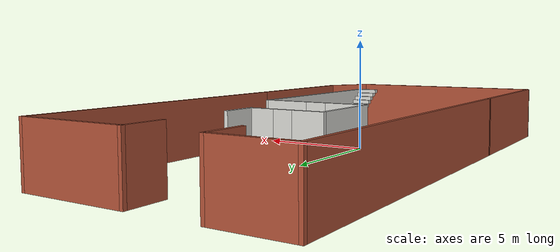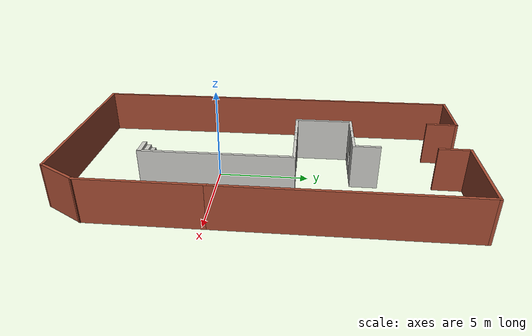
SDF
<?xml version='1.0'?>
<sdf version='1.7'>
  <model name='construction_area'>
    <pose>-0.27141 2.64885 0 0 -0 0</pose>
    <link name='Stairs_1'>
      <visual name='Stairs_1_Visual_0'>
        <pose>1.86697 -3.1665 0.083333 0 -0 0</pose>
        <geometry>
          <box>
            <size>1 0.233333 0.166667</size>
          </box>
        </geometry>
        <material>
          <script>
            <uri>file://media/materials/scripts/gazebo.material</uri>
            <name>Gazebo/CeilingTiled</name>
          </script>
          <ambient>0.760784 0.662745 0.627451 1</ambient>
        </material>
        <meta>
          <layer>0</layer>
        </meta>
      </visual>
      <collision name='Stairs_1_Collision_0'>
        <geometry>
          <box>
            <size>1 0.233333 0.166667</size>
          </box>
        </geometry>
        <pose>1.86697 -3.1665 0.083333 0 -0 0</pose>
      </collision>
      <visual name='Stairs_1_Visual_1'>
        <pose>1.86697 -3.39983 0.25 0 -0 0</pose>
        <geometry>
          <box>
            <size>1 0.233333 0.166667</size>
          </box>
        </geometry>
        <material>
          <script>
            <uri>file://media/materials/scripts/gazebo.material</uri>
            <name>Gazebo/CeilingTiled</name>
          </script>
          <ambient>0.760784 0.662745 0.627451 1</ambient>
        </material>
        <meta>
          <layer>0</layer>
        </meta>
      </visual>
      <collision name='Stairs_1_Collision_1'>
        <geometry>
          <box>
            <size>1 0.233333 0.166667</size>
          </box>
        </geometry>
        <pose>1.86697 -3.39983 0.25 0 -0 0</pose>
      </collision>
      <visual name='Stairs_1_Visual_2'>
        <pose>1.86697 -3.63317 0.416667 0 -0 0</pose>
        <geometry>
          <box>
            <size>1 0.233333 0.166667</size>
          </box>
        </geometry>
        <material>
          <script>
            <uri>file://media/materials/scripts/gazebo.material</uri>
            <name>Gazebo/CeilingTiled</name>
          </script>
          <ambient>0.760784 0.662745 0.627451 1</ambient>
        </material>
        <meta>
          <layer>0</layer>
        </meta>
      </visual>
      <collision name='Stairs_1_Collision_2'>
        <geometry>
          <box>
            <size>1 0.233333 0.166667</size>
          </box>
        </geometry>
        <pose>1.86697 -3.63317 0.416667 0 -0 0</pose>
      </collision>
      <visual name='Stairs_1_Visual_3'>
        <pose>1.86697 -3.8665 0.583333 0 -0 0</pose>
        <geometry>
          <box>
            <size>1 0.233333 0.166667</size>
          </box>
        </geometry>
        <material>
          <script>
            <uri>file://media/materials/scripts/gazebo.material</uri>
            <name>Gazebo/CeilingTiled</name>
          </script>
          <ambient>0.760784 0.662745 0.627451 1</ambient>
        </material>
        <meta>
          <layer>0</layer>
        </meta>
      </visual>
      <collision name='Stairs_1_Collision_3'>
        <geometry>
          <box>
            <size>1 0.233333 0.166667</size>
          </box>
        </geometry>
        <pose>1.86697 -3.8665 0.583333 0 -0 0</pose>
      </collision>
      <visual name='Stairs_1_Visual_4'>
        <pose>1.86697 -4.09983 0.75 0 -0 0</pose>
        <geometry>
          <box>
            <size>1 0.233333 0.166667</size>
          </box>
        </geometry>
        <material>
          <script>
            <uri>file://media/materials/scripts/gazebo.material</uri>
            <name>Gazebo/CeilingTiled</name>
          </script>
          <ambient>0.760784 0.662745 0.627451 1</ambient>
        </material>
        <meta>
          <layer>0</layer>
        </meta>
      </visual>
      <collision name='Stairs_1_Collision_4'>
        <geometry>
          <box>
            <size>1 0.233333 0.166667</size>
          </box>
        </geometry>
        <pose>1.86697 -4.09983 0.75 0 -0 0</pose>
      </collision>
      <visual name='Stairs_1_Visual_5'>
        <pose>1.86697 -4.33317 0.916667 0 -0 0</pose>
        <geometry>
          <box>
            <size>1 0.233333 0.166667</size>
          </box>
        </geometry>
        <material>
          <script>
            <uri>file://media/materials/scripts/gazebo.material</uri>
            <name>Gazebo/CeilingTiled</name>
          </script>
          <ambient>0.760784 0.662745 0.627451 1</ambient>
        </material>
        <meta>
          <layer>0</layer>
        </meta>
      </visual>
      <collision name='Stairs_1_Collision_5'>
        <geometry>
          <box>
            <size>1 0.233333 0.166667</size>
          </box>
        </geometry>
        <pose>1.86697 -4.33317 0.916667 0 -0 0</pose>
      </collision>
      <visual name='Stairs_1_Visual_6'>
        <pose>1.86697 -4.5665 1.08333 0 -0 0</pose>
        <geometry>
          <box>
            <size>1 0.233333 0.166667</size>
          </box>
        </geometry>
        <material>
          <script>
            <uri>file://media/materials/scripts/gazebo.material</uri>
            <name>Gazebo/CeilingTiled</name>
          </script>
          <ambient>0.760784 0.662745 0.627451 1</ambient>
        </material>
        <meta>
          <layer>0</layer>
        </meta>
      </visual>
      <collision name='Stairs_1_Collision_6'>
        <geometry>
          <box>
            <size>1 0.233333 0.166667</size>
          </box>
        </geometry>
        <pose>1.86697 -4.5665 1.08333 0 -0 0</pose>
      </collision>
      <visual name='Stairs_1_Visual_7'>
        <pose>1.86697 -4.79983 1.25 0 -0 0</pose>
        <geometry>
          <box>
            <size>1 0.233333 0.166667</size>
          </box>
        </geometry>
        <material>
          <script>
            <uri>file://media/materials/scripts/gazebo.material</uri>
            <name>Gazebo/CeilingTiled</name>
          </script>
          <ambient>0.760784 0.662745 0.627451 1</ambient>
        </material>
        <meta>
          <layer>0</layer>
        </meta>
      </visual>
      <collision name='Stairs_1_Collision_7'>
        <geometry>
          <box>
            <size>1 0.233333 0.166667</size>
          </box>
        </geometry>
        <pose>1.86697 -4.79983 1.25 0 -0 0</pose>
      </collision>
      <visual name='Stairs_1_Visual_8'>
        <pose>1.86697 -5.03317 1.41667 0 -0 0</pose>
        <geometry>
          <box>
            <size>1 0.233333 0.166667</size>
          </box>
        </geometry>
        <material>
          <script>
            <uri>file://media/materials/scripts/gazebo.material</uri>
            <name>Gazebo/CeilingTiled</name>
          </script>
          <ambient>0.760784 0.662745 0.627451 1</ambient>
        </material>
        <meta>
          <layer>0</layer>
        </meta>
      </visual>
      <collision name='Stairs_1_Collision_8'>
        <geometry>
          <box>
            <size>1 0.233333 0.166667</size>
          </box>
        </geometry>
        <pose>1.86697 -5.03317 1.41667 0 -0 0</pose>
      </collision>
      <visual name='Stairs_1_Visual_9'>
        <pose>1.86697 -5.2665 1.58333 0 -0 0</pose>
        <geometry>
          <box>
            <size>1 0.233333 0.166667</size>
          </box>
        </geometry>
        <material>
          <script>
            <uri>file://media/materials/scripts/gazebo.material</uri>
            <name>Gazebo/CeilingTiled</name>
          </script>
          <ambient>0.760784 0.662745 0.627451 1</ambient>
        </material>
        <meta>
          <layer>0</layer>
        </meta>
      </visual>
      <collision name='Stairs_1_Collision_9'>
        <geometry>
          <box>
            <size>1 0.233333 0.166667</size>
          </box>
        </geometry>
        <pose>1.86697 -5.2665 1.58333 0 -0 0</pose>
      </collision>
      <visual name='Stairs_1_Visual_10'>
        <pose>1.86697 -5.49984 1.75 0 -0 0</pose>
        <geometry>
          <box>
            <size>1 0.233333 0.166667</size>
          </box>
        </geometry>
        <material>
          <script>
            <uri>file://media/materials/scripts/gazebo.material</uri>
            <name>Gazebo/CeilingTiled</name>
          </script>
          <ambient>0.760784 0.662745 0.627451 1</ambient>
        </material>
        <meta>
          <layer>0</layer>
        </meta>
      </visual>
      <collision name='Stairs_1_Collision_10'>
        <geometry>
          <box>
            <size>1 0.233333 0.166667</size>
          </box>
        </geometry>
        <pose>1.86697 -5.49984 1.75 0 -0 0</pose>
      </collision>
      <visual name='Stairs_1_Visual_11'>
        <pose>1.86697 -5.73317 1.91667 0 -0 0</pose>
        <geometry>
          <box>
            <size>1 0.233333 0.166667</size>
          </box>
        </geometry>
        <material>
          <script>
            <uri>file://media/materials/scripts/gazebo.material</uri>
            <name>Gazebo/CeilingTiled</name>
          </script>
          <ambient>0.760784 0.662745 0.627451 1</ambient>
        </material>
        <meta>
          <layer>0</layer>
        </meta>
      </visual>
      <collision name='Stairs_1_Collision_11'>
        <geometry>
          <box>
            <size>1 0.233333 0.166667</size>
          </box>
        </geometry>
        <pose>1.86697 -5.73317 1.91667 0 -0 0</pose>
      </collision>
      <visual name='Stairs_1_Visual_12'>
        <pose>1.86697 -5.9665 2.08333 0 -0 0</pose>
        <geometry>
          <box>
            <size>1 0.233333 0.166667</size>
          </box>
        </geometry>
        <material>
          <script>
            <uri>file://media/materials/scripts/gazebo.material</uri>
            <name>Gazebo/CeilingTiled</name>
          </script>
          <ambient>0.760784 0.662745 0.627451 1</ambient>
        </material>
        <meta>
          <layer>0</layer>
        </meta>
      </visual>
      <collision name='Stairs_1_Collision_12'>
        <geometry>
          <box>
            <size>1 0.233333 0.166667</size>
          </box>
        </geometry>
        <pose>1.86697 -5.9665 2.08333 0 -0 0</pose>
      </collision>
      <visual name='Stairs_1_Visual_13'>
        <pose>1.86697 -6.19984 2.25 0 -0 0</pose>
        <geometry>
          <box>
            <size>1 0.233333 0.166667</size>
          </box>
        </geometry>
        <material>
          <script>
            <uri>file://media/materials/scripts/gazebo.material</uri>
            <name>Gazebo/CeilingTiled</name>
          </script>
          <ambient>0.760784 0.662745 0.627451 1</ambient>
        </material>
        <meta>
          <layer>0</layer>
        </meta>
      </visual>
      <collision name='Stairs_1_Collision_13'>
        <geometry>
          <box>
            <size>1 0.233333 0.166667</size>
          </box>
        </geometry>
        <pose>1.86697 -6.19984 2.25 0 -0 0</pose>
      </collision>
      <visual name='Stairs_1_Visual_14'>
        <pose>1.86697 -6.43317 2.41667 0 -0 0</pose>
        <geometry>
          <box>
            <size>1 0.233333 0.166667</size>
          </box>
        </geometry>
        <material>
          <script>
            <uri>file://media/materials/scripts/gazebo.material</uri>
            <name>Gazebo/CeilingTiled</name>
          </script>
          <ambient>0.760784 0.662745 0.627451 1</ambient>
        </material>
        <meta>
          <layer>0</layer>
        </meta>
      </visual>
      <collision name='Stairs_1_Collision_14'>
        <geometry>
          <box>
            <size>1 0.233333 0.166667</size>
          </box>
        </geometry>
        <pose>1.86697 -6.43317 2.41667 0 -0 0</pose>
      </collision>
    </link>
    <link name='Wall_1'>
      <collision name='Wall_1_Collision'>
        <geometry>
          <box>
            <size>9.75 0.15 2.5</size>
          </box>
        </geometry>
        <pose>0 0 1.25 0 -0 0</pose>
      </collision>
      <visual name='Wall_1_Visual'>
        <pose>0 0 1.25 0 -0 0</pose>
        <geometry>
          <box>
            <size>9.75 0.15 2.5</size>
          </box>
        </geometry>
        <material>
          <script>
            <uri>file://media/materials/scripts/gazebo.material</uri>
            <name>Gazebo/Bricks</name>
          </script>
          <ambient>1 1 1 1</ambient>
        </material>
        <meta>
          <layer>0</layer>
        </meta>
      </visual>
      <pose>-0.58859 -10.7289 0 0 -0 0</pose>
    </link>
    <link name='Wall_10'>
      <collision name='Wall_10_Collision'>
        <geometry>
          <box>
            <size>14.75 0.15 2.5</size>
          </box>
        </geometry>
        <pose>0 0 1.25 0 -0 0</pose>
      </collision>
      <visual name='Wall_10_Visual'>
        <pose>0 0 1.25 0 -0 0</pose>
        <geometry>
          <box>
            <size>14.75 0.15 2.5</size>
          </box>
        </geometry>
        <material>
          <script>
            <uri>file://media/materials/scripts/gazebo.material</uri>
            <name>Gazebo/Bricks</name>
          </script>
          <ambient>1 1 1 1</ambient>
        </material>
        <meta>
          <layer>0</layer>
        </meta>
      </visual>
      <pose>-5.41359 3.45631 0 0 -0 -1.5708</pose>
    </link>
    <link name='Wall_19'>
      <collision name='Wall_19_Collision'>
        <geometry>
          <box>
            <size>7.03521 0.15 2.5</size>
          </box>
        </geometry>
        <pose>0 0 1.25 0 -0 0</pose>
      </collision>
      <visual name='Wall_19_Visual'>
        <pose>0 0 1.25 0 -0 0</pose>
        <geometry>
          <box>
            <size>7.03521 0.15 2.5</size>
          </box>
        </geometry>
        <material>
          <script>
            <uri>file://media/materials/scripts/gazebo.material</uri>
            <name>Gazebo/Bricks</name>
          </script>
          <ambient>1 1 1 1</ambient>
        </material>
        <meta>
          <layer>0</layer>
        </meta>
      </visual>
      <pose>-5.40109 -7.28627 0 0 -0 -1.56716</pose>
    </link>
    <link name='Wall_2'>
      <collision name='Wall_2_Collision'>
        <geometry>
          <box>
            <size>2.5 0.15 2.5</size>
          </box>
        </geometry>
        <pose>0 0 1.25 0 -0 0</pose>
      </collision>
      <visual name='Wall_2_Visual'>
        <pose>0 0 1.25 0 -0 0</pose>
        <geometry>
          <box>
            <size>2.5 0.15 2.5</size>
          </box>
        </geometry>
        <material>
          <script>
            <uri>file://media/materials/scripts/gazebo.material</uri>
            <name>Gazebo/Bricks</name>
          </script>
          <ambient>1 1 1 1</ambient>
        </material>
        <meta>
          <layer>0</layer>
        </meta>
      </visual>
      <pose>4.79891 -9.71128 0 0 -0 1.0472</pose>
    </link>
    <link name='Wall_21'>
      <pose>-0.697015 4.70809 0 0 -0 3.14159</pose>
      <visual name='Wall_21_Visual_0'>
        <pose>-1.0627 0 1.25 0 -0 0</pose>
        <geometry>
          <box>
            <size>1.12459 0.15 2.5</size>
          </box>
        </geometry>
        <material>
          <script>
            <uri>file://media/materials/scripts/gazebo.material</uri>
            <name>Gazebo/CeilingTiled</name>
          </script>
          <ambient>1 1 1 1</ambient>
        </material>
        <meta>
          <layer>0</layer>
        </meta>
      </visual>
      <collision name='Wall_21_Collision_0'>
        <geometry>
          <box>
            <size>1.12459 0.15 2.5</size>
          </box>
        </geometry>
        <pose>-1.0627 0 1.25 0 -0 0</pose>
      </collision>
      <visual name='Wall_21_Visual_1'>
        <pose>0.562297 0 0.25 0 -0 0</pose>
        <geometry>
          <box>
            <size>2.12541 0.15 0.5</size>
          </box>
        </geometry>
        <material>
          <script>
            <uri>file://media/materials/scripts/gazebo.material</uri>
            <name>Gazebo/CeilingTiled</name>
          </script>
          <ambient>1 1 1 1</ambient>
        </material>
        <meta>
          <layer>0</layer>
        </meta>
      </visual>
      <collision name='Wall_21_Collision_1'>
        <geometry>
          <box>
            <size>2.12541 0.15 0.5</size>
          </box>
        </geometry>
        <pose>0.562297 0 0.25 0 -0 0</pose>
      </collision>
      <visual name='Wall_21_Visual_2'>
        <pose>0.962297 0 1.5 0 -0 0</pose>
        <geometry>
          <box>
            <size>1.32541 0.15 2</size>
          </box>
        </geometry>
        <material>
          <script>
            <uri>file://media/materials/scripts/gazebo.material</uri>
            <name>Gazebo/CeilingTiled</name>
          </script>
          <ambient>1 1 1 1</ambient>
        </material>
        <meta>
          <layer>0</layer>
        </meta>
      </visual>
      <collision name='Wall_21_Collision_2'>
        <geometry>
          <box>
            <size>1.32541 0.15 2</size>
          </box>
        </geometry>
        <pose>0.962297 0 1.5 0 -0 0</pose>
      </collision>
      <visual name='Wall_21_Visual_3'>
        <pose>-0.100406 0 1.9 0 -0 0</pose>
        <geometry>
          <box>
            <size>0.8 0.15 1.2</size>
          </box>
        </geometry>
        <material>
          <script>
            <uri>file://media/materials/scripts/gazebo.material</uri>
            <name>Gazebo/CeilingTiled</name>
          </script>
          <ambient>1 1 1 1</ambient>
        </material>
        <meta>
          <layer>0</layer>
        </meta>
      </visual>
      <collision name='Wall_21_Collision_3'>
        <geometry>
          <box>
            <size>0.8 0.15 1.2</size>
          </box>
        </geometry>
        <pose>-0.100406 0 1.9 0 -0 0</pose>
      </collision>
    </link>
    <link name='Wall_22'>
      <collision name='Wall_22_Collision'>
        <geometry>
          <box>
            <size>3.25 0.15 2.5</size>
          </box>
        </geometry>
        <pose>0 0 1.25 0 -0 0</pose>
      </collision>
      <visual name='Wall_22_Visual'>
        <pose>0 0 1.25 0 -0 0</pose>
        <geometry>
          <box>
            <size>3.25 0.15 2.5</size>
          </box>
        </geometry>
        <material>
          <script>
            <uri>file://media/materials/scripts/gazebo.material</uri>
            <name>Gazebo/CeilingTiled</name>
          </script>
          <ambient>1 1 1 1</ambient>
        </material>
        <meta>
          <layer>0</layer>
        </meta>
      </visual>
      <pose>-2.24702 3.15809 0 0 -0 -1.5708</pose>
    </link>
    <link name='Wall_23'>
      <pose>0.052985 1.60809 0 0 -0 0</pose>
      <visual name='Wall_23_Visual_0'>
        <pose>-1.45822 0 1.25 0 -0 0</pose>
        <geometry>
          <box>
            <size>1.83355 0.15 2.5</size>
          </box>
        </geometry>
        <material>
          <script>
            <uri>file://media/materials/scripts/gazebo.material</uri>
            <name>Gazebo/CeilingTiled</name>
          </script>
          <ambient>1 1 1 1</ambient>
        </material>
        <meta>
          <layer>0</layer>
        </meta>
      </visual>
      <collision name='Wall_23_Collision_0'>
        <geometry>
          <box>
            <size>1.83355 0.15 2.5</size>
          </box>
        </geometry>
        <pose>-1.45822 0 1.25 0 -0 0</pose>
      </collision>
      <visual name='Wall_23_Visual_1'>
        <pose>1.36678 0 1.25 0 -0 0</pose>
        <geometry>
          <box>
            <size>2.01645 0.15 2.5</size>
          </box>
        </geometry>
        <material>
          <script>
            <uri>file://media/materials/scripts/gazebo.material</uri>
            <name>Gazebo/CeilingTiled</name>
          </script>
          <ambient>1 1 1 1</ambient>
        </material>
        <meta>
          <layer>0</layer>
        </meta>
      </visual>
      <collision name='Wall_23_Collision_1'>
        <geometry>
          <box>
            <size>2.01645 0.15 2.5</size>
          </box>
        </geometry>
        <pose>1.36678 0 1.25 0 -0 0</pose>
      </collision>
      <visual name='Wall_23_Visual_2'>
        <pose>-0.091448 0 2.25 0 -0 0</pose>
        <geometry>
          <box>
            <size>0.9 0.15 0.5</size>
          </box>
        </geometry>
        <material>
          <script>
            <uri>file://media/materials/scripts/gazebo.material</uri>
            <name>Gazebo/CeilingTiled</name>
          </script>
          <ambient>1 1 1 1</ambient>
        </material>
        <meta>
          <layer>0</layer>
        </meta>
      </visual>
      <collision name='Wall_23_Collision_2'>
        <geometry>
          <box>
            <size>0.9 0.15 0.5</size>
          </box>
        </geometry>
        <pose>-0.091448 0 2.25 0 -0 0</pose>
      </collision>
    </link>
    <link name='Wall_24'>
      <collision name='Wall_24_Collision'>
        <geometry>
          <box>
            <size>8.25 0.15 2.5</size>
          </box>
        </geometry>
        <pose>0 0 1.25 0 -0 0</pose>
      </collision>
      <visual name='Wall_24_Visual'>
        <pose>0 0 1.25 0 -0 0</pose>
        <geometry>
          <box>
            <size>8.25 0.15 2.5</size>
          </box>
        </geometry>
        <material>
          <script>
            <uri>file://media/materials/scripts/gazebo.material</uri>
            <name>Gazebo/CeilingTiled</name>
          </script>
          <ambient>1 1 1 1</ambient>
        </material>
        <meta>
          <layer>0</layer>
        </meta>
      </visual>
      <pose>2.35298 -2.44191 0 0 -0 -1.5708</pose>
    </link>
    <link name='Wall_26'>
      <collision name='Wall_26_Collision'>
        <geometry>
          <box>
            <size>1.5 0.15 2.5</size>
          </box>
        </geometry>
        <pose>0 0 1.25 0 -0 0</pose>
      </collision>
      <visual name='Wall_26_Visual'>
        <pose>0 0 1.25 0 -0 0</pose>
        <geometry>
          <box>
            <size>1.5 0.15 2.5</size>
          </box>
        </geometry>
        <material>
          <script>
            <uri>file://media/materials/scripts/gazebo.material</uri>
            <name>Gazebo/CeilingTiled</name>
          </script>
          <ambient>1 1 1 1</ambient>
        </material>
        <meta>
          <layer>0</layer>
        </meta>
      </visual>
      <pose>0.852985 5.38309 0 0 -0 1.5708</pose>
    </link>
    <link name='Wall_3'>
      <collision name='Wall_3_Collision'>
        <geometry>
          <box>
            <size>6.5 0.15 2.5</size>
          </box>
        </geometry>
        <pose>0 0 1.25 0 -0 0</pose>
      </collision>
      <visual name='Wall_3_Visual'>
        <pose>0 0 1.25 0 -0 0</pose>
        <geometry>
          <box>
            <size>6.5 0.15 2.5</size>
          </box>
        </geometry>
        <material>
          <script>
            <uri>file://media/materials/scripts/gazebo.material</uri>
            <name>Gazebo/Bricks</name>
          </script>
          <ambient>1 1 1 1</ambient>
        </material>
        <meta>
          <layer>0</layer>
        </meta>
      </visual>
      <pose>5.38641 -5.5187 0 0 -0 1.5708</pose>
    </link>
    <link name='Wall_4'>
      <collision name='Wall_4_Collision'>
        <geometry>
          <box>
            <size>13.25 0.15 2.5</size>
          </box>
        </geometry>
        <pose>0 0 1.25 0 -0 0</pose>
      </collision>
      <visual name='Wall_4_Visual'>
        <pose>0 0 1.25 0 -0 0</pose>
        <geometry>
          <box>
            <size>13.25 0.15 2.5</size>
          </box>
        </geometry>
        <material>
          <script>
            <uri>file://media/materials/scripts/gazebo.material</uri>
            <name>Gazebo/Bricks</name>
          </script>
          <ambient>1 1 1 1</ambient>
        </material>
        <meta>
          <layer>0</layer>
        </meta>
      </visual>
      <pose>5.38641 4.20631 0 0 -0 1.5708</pose>
    </link>
    <link name='Wall_5'>
      <collision name='Wall_5_Collision'>
        <geometry>
          <box>
            <size>4.75 0.15 2.5</size>
          </box>
        </geometry>
        <pose>0 0 1.25 0 -0 0</pose>
      </collision>
      <visual name='Wall_5_Visual'>
        <pose>0 0 1.25 0 -0 0</pose>
        <geometry>
          <box>
            <size>4.75 0.15 2.5</size>
          </box>
        </geometry>
        <material>
          <script>
            <uri>file://media/materials/scripts/gazebo.material</uri>
            <name>Gazebo/Bricks</name>
          </script>
          <ambient>1 1 1 1</ambient>
        </material>
        <meta>
          <layer>0</layer>
        </meta>
      </visual>
      <pose>3.08641 10.7563 0 0 -0 3.14159</pose>
    </link>
    <link name='Wall_6'>
      <collision name='Wall_6_Collision'>
        <geometry>
          <box>
            <size>1.75 0.15 2.5</size>
          </box>
        </geometry>
        <pose>0 0 1.25 0 -0 0</pose>
      </collision>
      <visual name='Wall_6_Visual'>
        <pose>0 0 1.25 0 -0 0</pose>
        <geometry>
          <box>
            <size>1.75 0.15 2.5</size>
          </box>
        </geometry>
        <material>
          <script>
            <uri>file://media/materials/scripts/gazebo.material</uri>
            <name>Gazebo/Bricks</name>
          </script>
          <ambient>1 1 1 1</ambient>
        </material>
        <meta>
          <layer>0</layer>
        </meta>
      </visual>
      <pose>0.78641 9.95631 0 0 -0 -1.5708</pose>
    </link>
    <link name='Wall_8'>
      <collision name='Wall_8_Collision'>
        <geometry>
          <box>
            <size>1.75 0.15 2.5</size>
          </box>
        </geometry>
        <pose>0 0 1.25 0 -0 0</pose>
      </collision>
      <visual name='Wall_8_Visual'>
        <pose>0 0 1.25 0 -0 0</pose>
        <geometry>
          <box>
            <size>1.75 0.15 2.5</size>
          </box>
        </geometry>
        <material>
          <script>
            <uri>file://media/materials/scripts/gazebo.material</uri>
            <name>Gazebo/Bricks</name>
          </script>
          <ambient>1 1 1 1</ambient>
        </material>
        <meta>
          <layer>0</layer>
        </meta>
      </visual>
      <pose>-2.31359 9.95631 0 0 -0 1.5708</pose>
    </link>
    <link name='Wall_9'>
      <collision name='Wall_9_Collision'>
        <geometry>
          <box>
            <size>3.25 0.15 2.5</size>
          </box>
        </geometry>
        <pose>0 0 1.25 0 -0 0</pose>
      </collision>
      <visual name='Wall_9_Visual'>
        <pose>0 0 1.25 0 -0 0</pose>
        <geometry>
          <box>
            <size>3.25 0.15 2.5</size>
          </box>
        </geometry>
        <material>
          <script>
            <uri>file://media/materials/scripts/gazebo.material</uri>
            <name>Gazebo/Bricks</name>
          </script>
          <ambient>1 1 1 1</ambient>
        </material>
        <meta>
          <layer>0</layer>
        </meta>
      </visual>
      <pose>-3.86359 10.7563 0 0 -0 3.14159</pose>
    </link>
    <static>1</static>
  </model>
</sdf>
